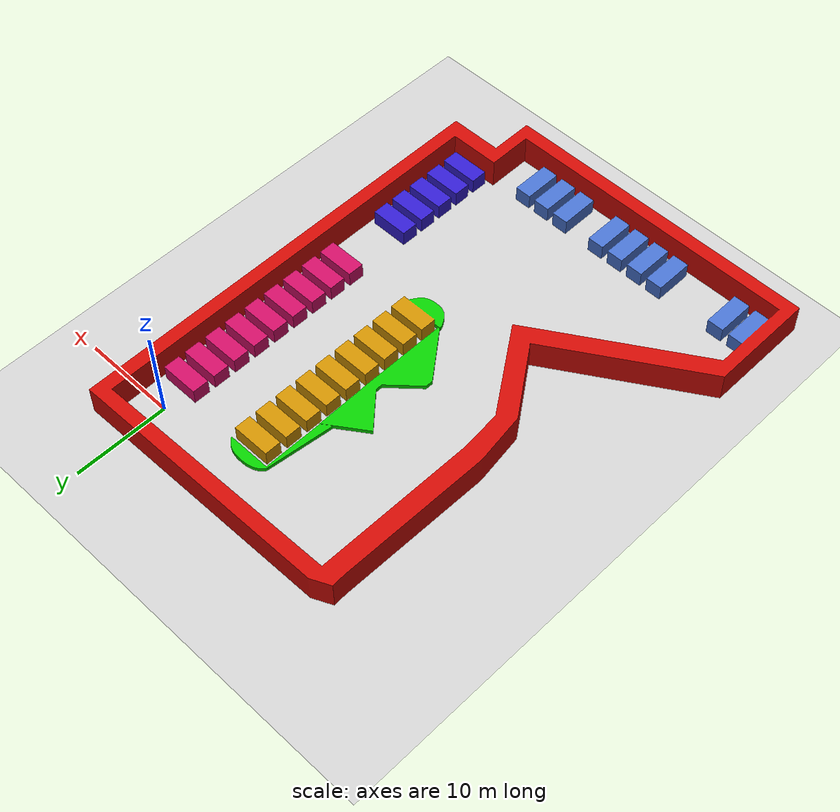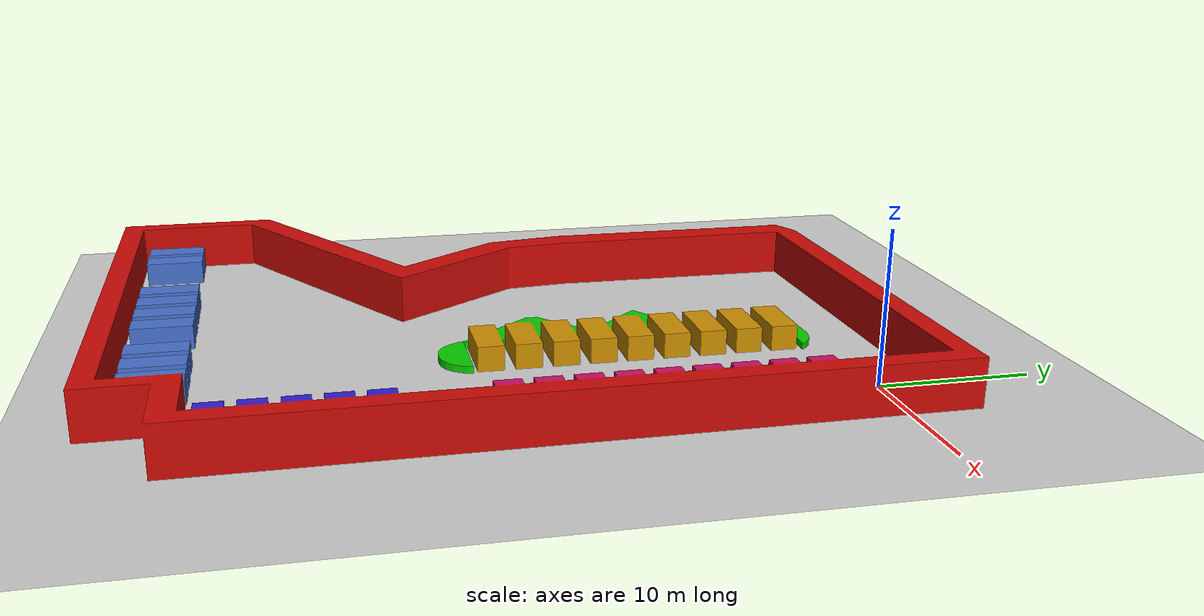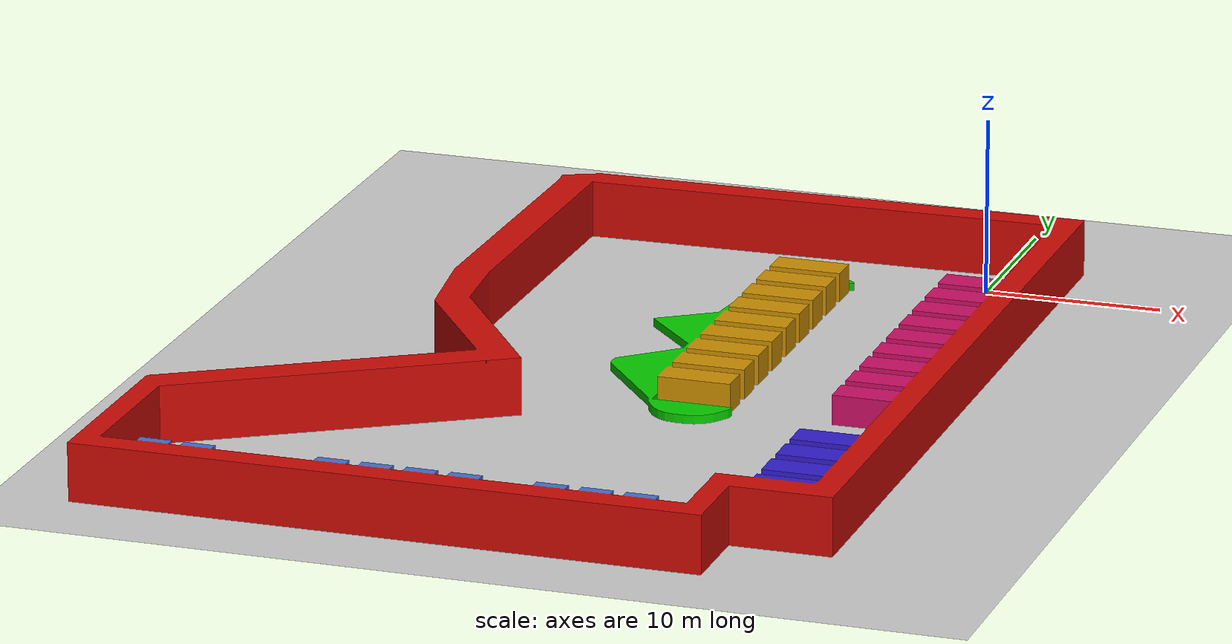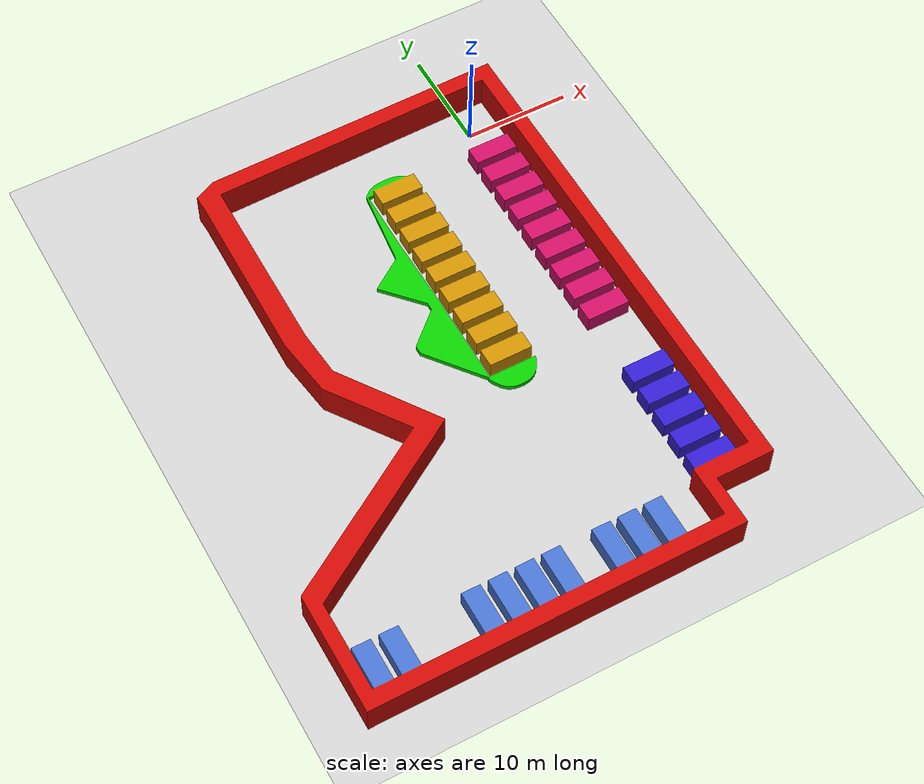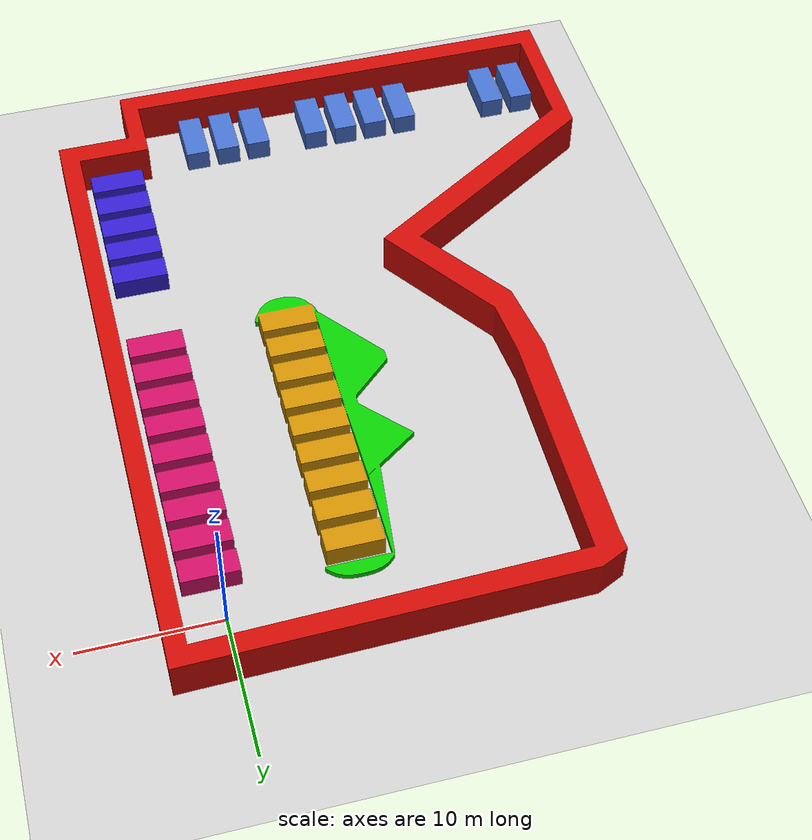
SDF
<sdf version='1.10'>
  <world name='empty'>
  <physics type="ode">
    <real_time_update_rate>1000.0</real_time_update_rate>
    <max_step_size>0.001</max_step_size>
    <real_time_factor>1</real_time_factor>
    <ode>
      <solver>
        <type>quick</type>
        <iters>150</iters>
        <precon_iters>0</precon_iters>
        <sor>1.400000</sor>
        <use_dynamic_moi_rescaling>1</use_dynamic_moi_rescaling>
      </solver>
        <constraints>
          <cfm>0.00001</cfm>
          <erp>0.2</erp>
          <contact_max_correcting_vel>2000.000000</contact_max_correcting_vel>
          <contact_surface_layer>0.01000</contact_surface_layer>
        </constraints>
      </ode>
    </physics>
    <plugin
      filename="gz-sim-physics-system"
      name="gz::sim::systems::Physics">
    </plugin>
    <plugin
      filename="gz-sim-user-commands-system"
      name="gz::sim::systems::UserCommands">
    </plugin>
    <plugin
      filename="gz-sim-scene-broadcaster-system"
      name="gz::sim::systems::SceneBroadcaster">
    </plugin>
    <plugin
      filename="gz-sim-sensors-system"
      name="gz::sim::systems::Sensors">
      <render_engine>ogre2</render_engine>
    </plugin>
    <plugin
      filename="gz-sim-imu-system"
      name="gz::sim::systems::Imu">
    </plugin>
    <plugin filename="gz-sim-navsat-system"
        name="gz::sim::systems::NavSat">
    </plugin>
    <gravity>0 0 -9.8000000000000007</gravity>
    <magnetic_field>5.5644999999999998e-06 2.2875799999999999e-05 -4.2388400000000002e-05</magnetic_field>
    <atmosphere type='adiabatic'/>
    <scene>
      <ambient>0.400000006 0.400000006 0.400000006 1</ambient>
      <background>0.699999988 0.699999988 0.699999988 1</background>
      <shadows>true</shadows>
    </scene>
    <model name='ground_plane'>
      <static>true</static>
      <link name='link'>
        <collision name='collision'>
          <geometry>
            <plane>
              <normal>0 0 1</normal>
              <size>100 100</size>
            </plane>
          </geometry>
          <surface>
            <friction>
              <ode/>
            </friction>
            <bounce/>
            <contact/>
          </surface>
        </collision>
        <visual name='visual'>
          <geometry>
            <plane>
              <normal>0 0 1</normal>
              <size>100 100</size>
            </plane>
          </geometry>
          <material>
            <ambient>0.800000012 0.800000012 0.800000012 1</ambient>
            <diffuse>0.800000012 0.800000012 0.800000012 1</diffuse>
            <specular>0.800000012 0.800000012 0.800000012 1</specular>
          </material>
        </visual>
        <pose>0 0 0 0 0 0</pose>
        <inertial>
          <pose>0 0 0 0 0 0</pose>
          <mass>1</mass>
          <inertia>
            <ixx>1</ixx>
            <ixy>0</ixy>
            <ixz>0</ixz>
            <iyy>1</iyy>
            <iyz>0</iyz>
            <izz>1</izz>
          </inertia>
        </inertial>
        <enable_wind>false</enable_wind>
      </link>
      <pose>0 0 0 0 0 0</pose>
      <self_collide>false</self_collide>
    </model>
    <model name='parking_map'>
      <link name='link'>
        <visual name='visual'>
          <geometry>
            <mesh>
              <uri>../models/parking_map.dae</uri>
            </mesh>
          </geometry>
        </visual>
        <collision name='collision'>
          <geometry>
            <mesh>
              <uri>../models/parking_map.dae</uri>
            </mesh>
          </geometry>
        </collision>
        <pose>0 0 0 0 0 0</pose>
        <inertial>
          <pose>0 0 0 0 0 0</pose>
          <mass>1</mass>
          <inertia>
            <ixx>1</ixx>
            <ixy>0</ixy>
            <ixz>0</ixz>
            <iyy>1</iyy>
            <iyz>0</iyz>
            <izz>1</izz>
          </inertia>
        </inertial>
        <enable_wind>false</enable_wind>
      </link>
      <pose>-9.2532071604323285 -23.011503571130298 -0.17106306157070375 4.992342155606248e-09 6.5375388430804396e-09 1.7601990802397439e-05</pose>
      <static>true</static>
      <self_collide>false</self_collide>
    </model>
    <light name='sun' type='directional'>
      <pose>0 0 10 0 0 0</pose>
      <cast_shadows>true</cast_shadows>
      <intensity>1</intensity>
      <direction>-0.5 0.10000000000000001 -0.90000000000000002</direction>
      <diffuse>0.800000012 0.800000012 0.800000012 1</diffuse>
      <specular>0.200000003 0.200000003 0.200000003 1</specular>
      <attenuation>
        <range>1000</range>
        <linear>0.0099999997764825821</linear>
        <constant>0.89999997615814209</constant>
        <quadratic>0.0010000000474974513</quadratic>
      </attenuation>
      <spot>
        <inner_angle>0</inner_angle>
        <outer_angle>0</outer_angle>
        <falloff>0</falloff>
      </spot>
    </light>
    <spherical_coordinates>
      <surface_model>EARTH_WGS84</surface_model>
      <latitude_deg>3.0</latitude_deg>
      <longitude_deg>101.5</longitude_deg>
      <elevation>50.0</elevation>
      <heading_deg>0</heading_deg>
    </spherical_coordinates>
  </world>
</sdf>
